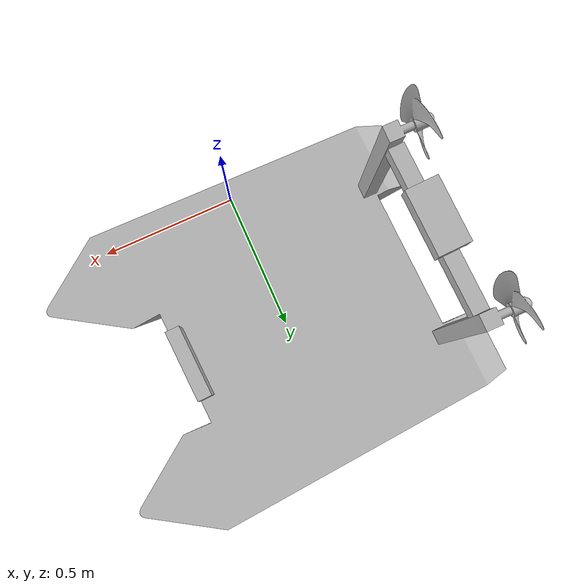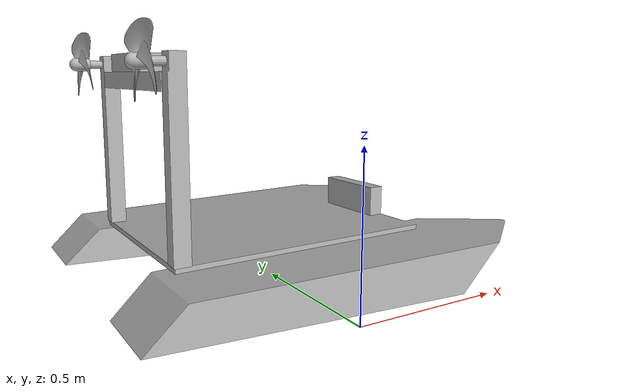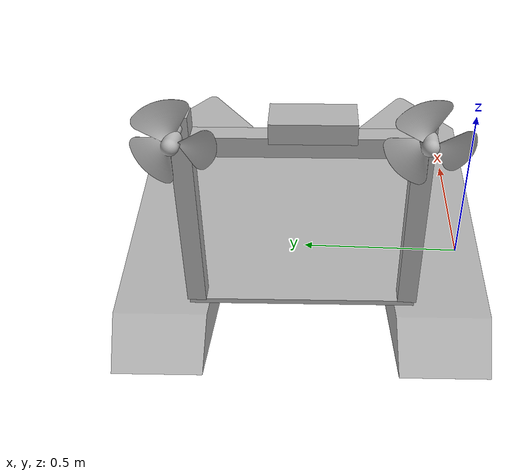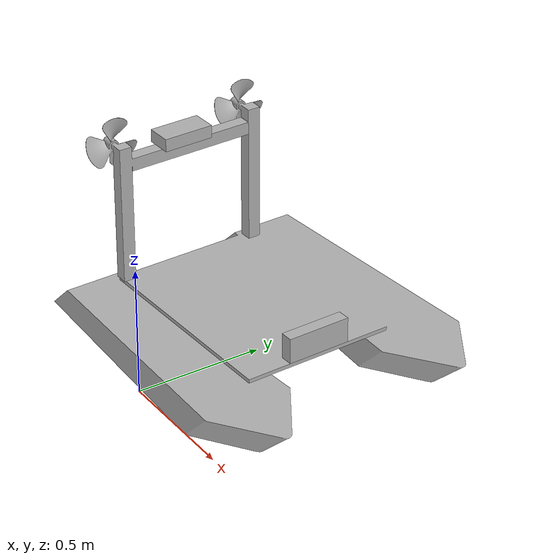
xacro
<?xml version="1.0" ?>
<robot name="WATER" xmlns:xacro="http://www.ros.org/wiki/xacro">

<xacro:include filename="$(find WATER_description)/urdf/materials.xacro" />
<xacro:include filename="$(find WATER_description)/urdf/WATER.gazebo" />

<!--Base Link/ Boat Hull-->
<link name="base_link">
  <inertial>
    <origin rpy="0 0 0" xyz="0.041985844365174226 0.5041551418509241 0.11753492516942377"/>
    <mass value="100.05"/>
    <inertia ixx="102.253408" ixy="0.944947" ixz="0.571694" iyy="75.226668" iyz="0.019964" izz="175.055626"/>
  </inertial>
  <visual>
    <origin rpy="0 0 0" xyz="0 0 0"/>
    <geometry>
      <mesh filename="package://WATER_description/meshes/base_link.stl" scale="0.001 0.001 0.001"/>
    </geometry>
    <material name="silver"/>
  </visual>
  <collision>
    <origin rpy="0 0 0" xyz="0 0 0"/>
    <geometry>
      <mesh filename="package://WATER_description/meshes/base_link.stl" scale="0.001 0.001 0.001"/>
    </geometry>
  </collision>
</link>

<!--Left Motor Support-->
<link name="motor_support_left_1">
  <inertial>
    <origin rpy="0 0 0" xyz="-0.00038428463028200577 -1.931763642015749e-05 0.2794011308123638"/>
    <mass value="1"/>
    <inertia ixx="0.281164" ixy="-2.4e-05" ixz="0.002165" iyy="0.281586" iyz="-0.0003" izz="0.004869"/>
  </inertial>
  <visual>
    <origin rpy="0 0 0" xyz="0.457043 -0.766899 -0.19"/>
    <geometry>
      <mesh filename="package://WATER_description/meshes/motor_support_left_1.stl" scale="0.001 0.001 0.001"/>
    </geometry>
    <material name="silver"/>
  </visual>
  <collision>
    <origin rpy="0 0 0" xyz="0.457043 -0.766899 -0.19"/>
    <geometry>
      <mesh filename="package://WATER_description/meshes/motor_support_left_1.stl" scale="0.001 0.001 0.001"/>
    </geometry>
  </collision>
</link>

<!--Right Motor Support-->
<link name="motor_support_right_1">
  <inertial>
    <origin rpy="0 0 0" xyz="-0.005187497162707055 0.13542109450750728 0.37290152359449974"/>
    <mass value="1"/>
    <inertia ixx="1.104335" ixy="0.022331" ixz="0.012255" iyy="0.483329" iyz="-0.286828" izz="0.631875"/>
  </inertial>
  <visual>
    <origin rpy="0 0 0" xyz="0.436789 -0.206555 -0.19"/>
    <geometry>
      <mesh filename="package://WATER_description/meshes/motor_support_right_1.stl" scale="0.001 0.001 0.001"/>
    </geometry>
    <material name="silver"/>
  </visual>
  <collision>
    <origin rpy="0 0 0" xyz="0.436789 -0.206555 -0.19"/>
    <geometry>
      <mesh filename="package://WATER_description/meshes/motor_support_right_1.stl" scale="0.001 0.001 0.001"/>
    </geometry>
  </collision>
</link>

<!--Left Propller-->
<link name="propeller_left_1">
  <inertial>
    <origin rpy="0 0 0" xyz="-0.02465138415626883 -3.202893716913735e-07 -5.662137425588298e-15"/>
    <mass value="0.025"/>
    <inertia ixx="0.001968" ixy="-0.0" ixz="0.0" iyy="0.001151" iyz="-0.0" izz="0.001151"/>
  </inertial>
  <visual>
    <origin rpy="0 0 0" xyz="0.497574 -0.206555 -0.715"/>
    <geometry>
      <mesh filename="package://WATER_description/meshes/propeller_left_1.stl" scale="0.001 0.001 0.001"/>
    </geometry>
    <material name="silver"/>
  </visual>
  <collision>
    <origin rpy="0 0 0" xyz="0.497574 -0.206555 -0.715"/>
    <geometry>
      <mesh filename="package://WATER_description/meshes/propeller_left_1.stl" scale="0.001 0.001 0.001"/>
    </geometry>
  </collision>
</link>

<!--Right Propeller-->
<link name="propeller_left_3">
  <inertial>
    <origin rpy="0 0 0" xyz="-0.024651081039449574 8.693535802350993e-08 3.5338152826192015e-07"/>
    <mass value="0.025"/>
    <inertia ixx="0.001968" ixy="0.0" ixz="0.0" iyy="0.001151" iyz="-0.0" izz="0.001151"/>
  </inertial>
  <visual>
    <origin rpy="0 0 0" xyz="0.521155 -0.767824 -0.713099"/>
    <geometry>
      <mesh filename="package://WATER_description/meshes/propeller_left_3.stl" scale="0.001 0.001 0.001"/>
    </geometry>
    <material name="silver"/>
  </visual>
  <collision>
    <origin rpy="0 0 0" xyz="0.521155 -0.767824 -0.713099"/>
    <geometry>
      <mesh filename="package://WATER_description/meshes/propeller_left_3.stl" scale="0.001 0.001 0.001"/>
    </geometry>
  </collision>
</link>

<!--Camera Link-->
<link name="camera_link_1">
  <inertial>
    <origin rpy="0 0 0" xyz="3.962738093221674e-08 -1.2711576602431052e-07 0.025000000000001354"/>
    <mass value="0.05"/>
    <inertia ixx="0.027778" ixy="0.000684" ixz="-0.0" iyy="0.008201" iyz="0.0" izz="0.032708"/>
  </inertial>
  <visual>
    <origin rpy="0 0 0" xyz="0.447271 -0.462171 -0.69"/>
    <geometry>
      <mesh filename="package://WATER_description/meshes/camera_link_1.stl" scale="0.001 0.001 0.001"/>
    </geometry>
    <material name="silver"/>
  </visual>
  <collision>
    <origin rpy="0 0 0" xyz="0.447271 -0.462171 -0.69"/>
    <geometry>
      <mesh filename="package://WATER_description/meshes/camera_link_1.stl" scale="0.001 0.001 0.001"/>
    </geometry>
  </collision>
</link>

<!--Balance Link-->
<link name="balance_1">
  <inertial>
    <origin rpy="0 0 0" xyz="0.024984655377752518 0.0008720125959205127 0.049999999999999184"/>
    <mass value="2.1"/>
    <inertia ixx="0.059224" ixy="0.001711" ixz="0.0" iyy="0.010281" iyz="-0.0" izz="0.053151"/>
  </inertial>
  <visual>
    <origin rpy="0 0 0" xyz="-0.332254 -0.514292 -0.19"/>
    <geometry>
      <mesh filename="package://WATER_description/meshes/balance_1.stl" scale="0.001 0.001 0.001"/>
    </geometry>
    <material name="silver"/>
  </visual>
  <collision>
    <origin rpy="0 0 0" xyz="-0.332254 -0.514292 -0.19"/>
    <geometry>
      <mesh filename="package://WATER_description/meshes/balance_1.stl" scale="0.001 0.001 0.001"/>
    </geometry>
  </collision>
</link>

<!--Left Motor Support Joint-->
<joint name="Rigid16" type="fixed">
  <origin rpy="0 0 0" xyz="-0.457043 0.766899 0.19"/>
  <parent link="base_link"/>
  <child link="motor_support_left_1"/>
</joint>

<!--Right Motor Support Joint-->
<joint name="Rigid17" type="fixed">
  <origin rpy="0 0 0" xyz="-0.436789 0.206555 0.19"/>
  <parent link="base_link"/>
  <child link="motor_support_right_1"/>
</joint>

<!--Left Propller Joint-->
<joint name="Rev18" type="continuous">
  <origin rpy="0 0 0" xyz="-0.064112 0.000925 0.523099"/>
  <parent link="motor_support_left_1"/>
  <child link="propeller_left_1"/>
  <axis xyz="-1.0 0.0 0.0"/>
  <limit effort="300" velocity="10"/>
</joint>

<!--Right Propller Joint-->
<joint name="Rev19" type="continuous">
  <origin rpy="0 0 0" xyz="-0.060785 0.0 0.525"/>
  <parent link="motor_support_right_1"/>
  <child link="propeller_left_3"/>
  <axis xyz="-1.0 0.0 -0.0"/>
  <limit effort="300" velocity="10"/>
</joint>

<!--Camera Joint-->
<joint name="Rigid20" type="fixed">
  <origin rpy="0 0 0" xyz="-0.010482 0.255616 0.5"/>
  <parent link="motor_support_right_1"/>
  <child link="camera_link_1"/>
</joint>

<joint name="Rigid21" type="fixed">
  <origin rpy="0 0 0" xyz="0.332254 0.514292 0.19"/>
  <parent link="base_link"/>
  <child link="balance_1"/>
</joint>

<!--Tranmission for Right Propller-->
<transmission name="simple_trans_right">
  <type>transmission_interface/SimpleTransmission</type>
  <joint name="Rev19">
    <hardwareInterface>hardware_interface/VelocityJointInterface</hardwareInterface>
  </joint>
  <actuator name="Right_propeller_motor">
    <mechanicalReduction>1</mechanicalReduction>
    <hardwareInterface>hardware_interface/VelocityJointInterface</hardwareInterface>
  </actuator>
</transmission>

<!--Tranmission for Left Propller-->
<transmission name="simple_trans_left">
  <type>transmission_interface/SimpleTransmission</type>
  <joint name="Rev18">
    <hardwareInterface>hardware_interface/VelocityJointInterface</hardwareInterface>
  </joint>
  <actuator name="Left_propeller_motor">
    <mechanicalReduction>1</mechanicalReduction>
    <hardwareInterface>hardware_interface/VelocityJointInterface</hardwareInterface>
  </actuator>
</transmission>

</robot>

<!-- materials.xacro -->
<robot name="WATER" xmlns:xacro="http://www.ros.org/wiki/xacro" >

<material name="silver">
  <color rgba="0.700 0.700 0.700 1.000"/>
</material>

</robot>

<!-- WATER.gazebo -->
<robot name="WATER" xmlns:xacro="http://www.ros.org/wiki/xacro" >

<xacro:property name="body_color" value="Gazebo/Silver" />

<gazebo>
  <plugin filename="libgazebo_ros_control.so" name="control"/>
</gazebo>
<gazebo reference="base_link">
  <material>${body_color}</material>
  <mu1>0.2</mu1>
  <mu2>0.2</mu2>
  <selfCollide>true</selfCollide>
  <gravity>true</gravity>
</gazebo>

<gazebo reference="motor_support_left_1">
  <material>${body_color}</material>
  <mu1>0.2</mu1>
  <mu2>0.2</mu2>
  <selfCollide>true</selfCollide>
</gazebo>

<gazebo reference="motor_support_right_1">
  <material>${body_color}</material>
  <mu1>0.2</mu1>
  <mu2>0.2</mu2>
  <selfCollide>true</selfCollide>
</gazebo>

<gazebo reference="propeller_left_1">
  <material>${body_color}</material>
  <mu1>0.2</mu1>
  <mu2>0.2</mu2>
  <selfCollide>true</selfCollide>
</gazebo>

<gazebo reference="propeller_left_3">
  <material>${body_color}</material>
  <mu1>0.2</mu1>
  <mu2>0.2</mu2>
  <selfCollide>true</selfCollide>
</gazebo>

<gazebo reference="camera_link_1">
  <material>${body_color}</material>
  <mu1>0.2</mu1>
  <mu2>0.2</mu2>
  <selfCollide>true</selfCollide>
</gazebo>

<gazebo reference="balance_1">
  <material>${body_color}</material>
  <mu1>0.2</mu1>
  <mu2>0.2</mu2>
  <selfCollide>true</selfCollide>
</gazebo>

<!--Gazbeo ROS Controller PLugin-->
<gazebo>
  <plugin name="gazebo_ros_control" filename="libgazebo_ros_controller.so">
  </plugin>
</gazebo>

<!--Differential Drive Plugin-->
<gazebo>
  <plugin name="differential_drive_controller" filename="libgazebo_ros_diff_drive.so">
    <alwaysOn>false</alwaysOn>
    <legacyMode>false</legacyMode>
    <updateRate>50</updateRate>
    <leftJoint>Rev18</leftJoint>
    <rightJoint>Rev19</rightJoint>
    <wheelSeparation>1</wheelSeparation>
    <wheelDiameter>0.3</wheelDiameter>
    <torque>20</torque>
    <commandTopic>/diff_drive/cmd_vel</commandTopic>
    <odometryTopic>/diff_drive/odom</odometryTopic>
    <odometryFrame>odom</odometryFrame>
    <robotBaseFrame>base_link</robotBaseFrame>
  </plugin>
</gazebo>

<!--Camera Plugin-->
  <gazebo reference="camera_link_1">
    <sensor type="camera" name="camera1">
      <update_rate>30.0</update_rate>
      <camera name="head">
        <horizontal_fov>1.3962634</horizontal_fov>
        <image>
          <width>800</width>
          <height>800</height>
          <format>R8G8B8</format>
        </image>
        <clip>
          <near>0.02</near>
          <far>300</far>
        </clip>
        <noise>
          <type>gaussian</type>
          <mean>0.0</mean>
          <stddev>0.007</stddev>
        </noise>
      </camera>
      <plugin name="camera_controller" filename="libgazebo_ros_camera.so">
        <alwaysOn>true</alwaysOn>
        <updateRate>0.0</updateRate>
        <cameraName>rrbot/camera1</cameraName>
        <imageTopicName>image_raw</imageTopicName>
        <cameraInfoTopicName>camera_info</cameraInfoTopicName>
        <frameName>camera_link</frameName>
        <hackBaseline>0.07</hackBaseline>
        <distortionK1>0.0</distortionK1>
        <distortionK2>0.0</distortionK2>
        <distortionK3>0.0</distortionK3>
        <distortionT1>0.0</distortionT1>
        <distortionT2>0.0</distortionT2>
      </plugin>
    </sensor>
  </gazebo>

<!--Lift Drag Plugin-->
<gazebo>
  <plugin name="rotor_1" filename="libLiftDragPlugin.so">
      <a0>2</a0>
      <alpha_stall>4</alpha_stall>
      <cla>10.2500</cla>
      <cda>0.10</cda>
      <cma>0.00</cma>
      <cla_stall>-0.025</cla_stall>
      <cda_stall>0.0</cda_stall>
      <cma_stall>0.0</cma_stall>
      <area>0.002</area>
      <air_density>997</air_density>
      <cp>0.084 0 0</cp>
      <forward>1 0 0</forward>
      <upward>0 0 1</upward>
      <link_name>propeller_left_1</link_name>
    </plugin>
</gazebo>

<gazebo>
  <plugin name="rotor_2" filename="libLiftDragPlugin.so">
      <a0>2</a0>
      <alpha_stall>4</alpha_stall>
      <cla>10.2500</cla>
      <cda>0.10</cda>
      <cma>0.00</cma>
      <cla_stall>-0.025</cla_stall>
      <cda_stall>0.0</cda_stall>
      <cma_stall>0.0</cma_stall>
      <area>0.002</area>
      <air_density>997</air_density>
      <cp>0.084 0 0</cp>
      <forward>1 0 0</forward>
      <upward>0 0 1</upward>
      <link_name>propeller_left_3</link_name>
    </plugin>
</gazebo>

<!--Bouyancy Plugin-->
<gazebo>
  <plugin name="BuoyancyPlugin" filename="libBuoyancyPlugin.so">
    <fluid_density>997.8</fluid_density>
    <link name="base_link">
      <center_of_volume>0.041985844365174226 0.50899 0.11753492516942377</center_of_volume>
      <volume>0.09972</volume>
    </link>
  </plugin>
</gazebo>

<!--USV Sim Plugin-->
<gazebo >
  <plugin name='usv_dynamics_wamv_dynamics_plugin' filename='libgazebo_usv_dynamics_plugin.so'>
      <bodyName>base_link</bodyName>
      <waterLevel>0</waterLevel>
      <nDotR>0.0</nDotR>
      <waterDensity>997.8</waterDensity>
      <xDotU>0.0</xDotU>
      <yDotV>0.0</yDotV>
      <xU>51.3</xU>
      <xUU>72 .4</xUU>
      <yV>40.0</yV>
      <yVV>0.0</yVV>
      <zW>500.0</zW>
      <kP>0.0</kP>
      <mQ>0.0</mQ>
      <nR>0.0</nR>
      <nRR>0.0</nRR>
      <hullRadius>0.213</hullRadius>
      <boatWidth>0.5</boatWidth>
      <boatLength>0.5</boatLength>
      <length_n>2</length_n>
      <wave_model>ocean_waves</wave_model>
    </plugin>
</gazebo>

<!--Custom Plugin-->
<!-- Add plugin Propulsion -->
    <gazebo>
        <plugin name="propulsion_plugin" filename="libpropulsion_plugin.so">
            <propulsionTopicName>/propulsion</propulsionTopicName>
            <NameLinkToApplyPropulsion>base_link</NameLinkToApplyPropulsion>
            <rate>2.0</rate>
        </plugin>
    </gazebo>

</robot>
